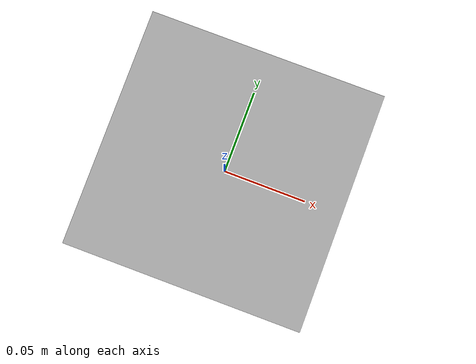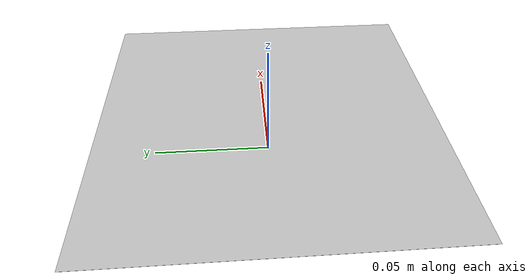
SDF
<?xml version="1.0"?>
<sdf version='1.5'>
  <model name='arucotag0'>
    <link name='tag'>
      <pose frame=''>0 0 0.01 0 -0 0</pose>
      <inertial>
        <pose frame=''>0 0 0 0 -0 0</pose>
        <mass>0.1</mass>
        <inertia>
          <ixx>1</ixx>
          <ixy>0</ixy>
          <ixz>0</ixz>
          <iyy>1</iyy>
          <iyz>0</iyz>
          <izz>1</izz>
        </inertia>
      </inertial>
      <visual name='ARUCO_visual'>
        <pose frame=''>0 0 0.01 0 -0 0</pose>
        <geometry>
          <box>
            <size>0.14 0.14 0.0001</size>
          </box>
        </geometry>
        <material>
          <script>
            <uri>model://arucotag0/materials/scripts</uri>
            <uri>model://arucotag0/materials/textures</uri>
            <name>arucotag0</name>
          </script>
        </material>
      </visual>
      <gravity>0</gravity>
      <velocity_decay/>
      <self_collide>0</self_collide>
    </link>
  </model>
</sdf>
